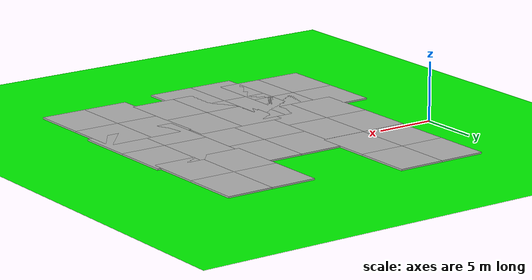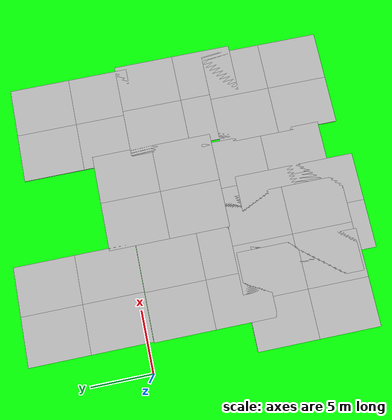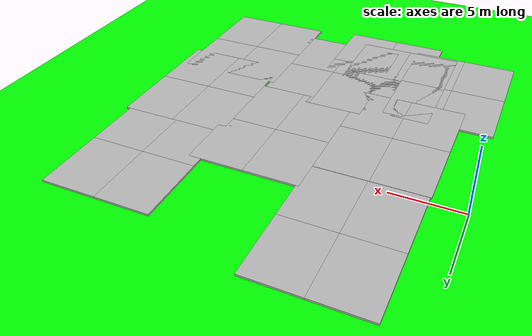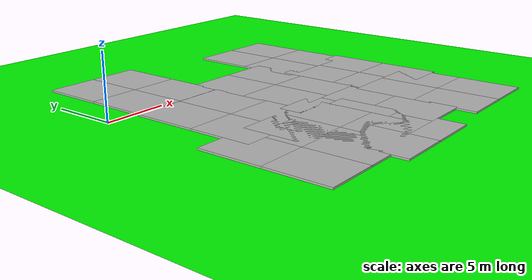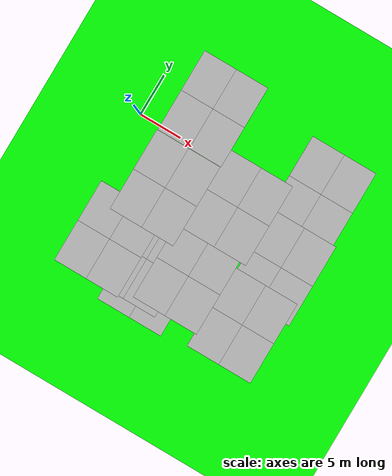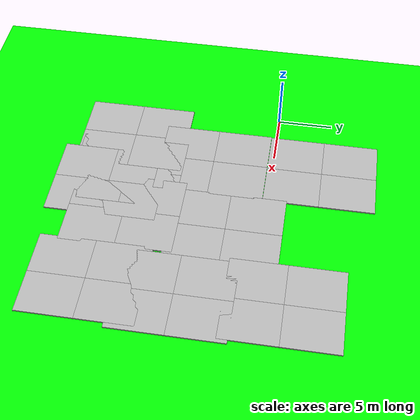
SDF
<sdf version="1.6">
 <world name="default">
  <model name="ground_plane">
   <static>1</static>
   <link name="link">
    <collision name="collision">
     <geometry><plane><normal>0 0 1</normal><size>100 100</size></plane></geometry>
     <surface><friction><ode><mu>100</mu><mu2>50</mu2></ode></friction></surface>
    </collision>
    <visual name="visual">
     <cast_shadows>0</cast_shadows>
     <geometry><plane><normal>0 0 1</normal><size>100 100</size></plane></geometry>
     <material>
      <ambient>0 1 0 1</ambient>
      <diffuse>0 1 0 1</diffuse>
      <specular>0.1 0.1 0.1 1</specular>
      <emissive>0 0 0 0</emissive>
     </material>
    </visual>
   </link>
  </model>
  <model name="mud_box_clone_2">
   <static>1</static>
   <link name="link">
    <collision name="collision"><geometry><box><size>8 10 0.2</size></box></geometry></collision>
    <visual name="visual_1">
     <pose>-2 2.5 0 0 -0 0</pose>
     <cast_shadows>0</cast_shadows>
     <geometry><box><size>4 5 0.2</size></box></geometry>
     <material>
      <script>
       <uri>model://mud_box/materials/scripts</uri>
       <uri>model://mud_box/materials/textures</uri>
       <name>vrc/mud</name>
      </script>
     </material>
    </visual>
    <visual name="visual_2">
     <pose>2 2.5 0 0 -0 0</pose>
     <cast_shadows>0</cast_shadows>
     <geometry><box><size>4 5 0.2</size></box></geometry>
     <material>
      <script>
       <uri>model://mud_box/materials/scripts</uri>
       <uri>model://mud_box/materials/textures</uri>
       <name>vrc/mud</name>
      </script>
     </material>
    </visual>
    <visual name="visual_3">
     <pose>2 -2.5 0 0 -0 0</pose>
     <cast_shadows>0</cast_shadows>
     <geometry><box><size>4 5 0.2</size></box></geometry>
     <material>
      <script>
       <uri>model://mud_box/materials/scripts</uri>
       <uri>model://mud_box/materials/textures</uri>
       <name>vrc/mud</name>
      </script>
     </material>
    </visual>
    <visual name="visual_4">
     <pose>-2 -2.5 0 0 -0 0</pose>
     <cast_shadows>0</cast_shadows>
     <geometry><box><size>4 5 0.2</size></box></geometry>
     <material>
      <script>
       <uri>model://mud_box/materials/scripts</uri>
       <uri>model://mud_box/materials/textures</uri>
       <name>vrc/mud</name>
      </script>
     </material>
    </visual>
   </link>
   <pose>6.41573 4.52602 0 0 -0 0</pose>
  </model>
  <model name="mud_box_clone_3">
   <static>1</static>
   <link name="link">
    <collision name="collision"><geometry><box><size>8 10 0.2</size></box></geometry></collision>
    <visual name="visual_1">
     <pose>-2 2.5 0 0 -0 0</pose>
     <cast_shadows>0</cast_shadows>
     <geometry><box><size>4 5 0.2</size></box></geometry>
     <material>
      <script>
       <uri>model://mud_box/materials/scripts</uri>
       <uri>model://mud_box/materials/textures</uri>
       <name>vrc/mud</name>
      </script>
     </material>
    </visual>
    <visual name="visual_2">
     <pose>2 2.5 0 0 -0 0</pose>
     <cast_shadows>0</cast_shadows>
     <geometry><box><size>4 5 0.2</size></box></geometry>
     <material>
      <script>
       <uri>model://mud_box/materials/scripts</uri>
       <uri>model://mud_box/materials/textures</uri>
       <name>vrc/mud</name>
      </script>
     </material>
    </visual>
    <visual name="visual_3">
     <pose>2 -2.5 0 0 -0 0</pose>
     <cast_shadows>0</cast_shadows>
     <geometry><box><size>4 5 0.2</size></box></geometry>
     <material>
      <script>
       <uri>model://mud_box/materials/scripts</uri>
       <uri>model://mud_box/materials/textures</uri>
       <name>vrc/mud</name>
      </script>
     </material>
    </visual>
    <visual name="visual_4">
     <pose>-2 -2.5 0 0 -0 0</pose>
     <cast_shadows>0</cast_shadows>
     <geometry><box><size>4 5 0.2</size></box></geometry>
     <material>
      <script>
       <uri>model://mud_box/materials/scripts</uri>
       <uri>model://mud_box/materials/textures</uri>
       <name>vrc/mud</name>
      </script>
     </material>
    </visual>
   </link>
   <pose>6.33977 -5.49838 0 0 -0 0</pose>
  </model>
  <model name="mud_box_clone_5">
   <static>1</static>
   <link name="link">
    <collision name="collision"><geometry><box><size>8 10 0.2</size></box></geometry></collision>
    <visual name="visual_1">
     <pose>-2 2.5 0 0 -0 0</pose>
     <cast_shadows>0</cast_shadows>
     <geometry><box><size>4 5 0.2</size></box></geometry>
     <material>
      <script>
       <uri>model://mud_box/materials/scripts</uri>
       <uri>model://mud_box/materials/textures</uri>
       <name>vrc/mud</name>
      </script>
     </material>
    </visual>
    <visual name="visual_2">
     <pose>2 2.5 0 0 -0 0</pose>
     <cast_shadows>0</cast_shadows>
     <geometry><box><size>4 5 0.2</size></box></geometry>
     <material>
      <script>
       <uri>model://mud_box/materials/scripts</uri>
       <uri>model://mud_box/materials/textures</uri>
       <name>vrc/mud</name>
      </script>
     </material>
    </visual>
    <visual name="visual_3">
     <pose>2 -2.5 0 0 -0 0</pose>
     <cast_shadows>0</cast_shadows>
     <geometry><box><size>4 5 0.2</size></box></geometry>
     <material>
      <script>
       <uri>model://mud_box/materials/scripts</uri>
       <uri>model://mud_box/materials/textures</uri>
       <name>vrc/mud</name>
      </script>
     </material>
    </visual>
    <visual name="visual_4">
     <pose>-2 -2.5 0 0 -0 0</pose>
     <cast_shadows>0</cast_shadows>
     <geometry><box><size>4 5 0.2</size></box></geometry>
     <material>
      <script>
       <uri>model://mud_box/materials/scripts</uri>
       <uri>model://mud_box/materials/textures</uri>
       <name>vrc/mud</name>
      </script>
     </material>
    </visual>
   </link>
   <pose>14.1998 -3.30517 0 0 -0 0</pose>
  </model>
  <model name="mud_box_clone_6">
   <static>1</static>
   <link name="link">
    <collision name="collision"><geometry><box><size>8 10 0.2</size></box></geometry></collision>
    <visual name="visual_1">
     <pose>-2 2.5 0 0 -0 0</pose>
     <cast_shadows>0</cast_shadows>
     <geometry><box><size>4 5 0.2</size></box></geometry>
     <material>
      <script>
       <uri>model://mud_box/materials/scripts</uri>
       <uri>model://mud_box/materials/textures</uri>
       <name>vrc/mud</name>
      </script>
     </material>
    </visual>
    <visual name="visual_2">
     <pose>2 2.5 0 0 -0 0</pose>
     <cast_shadows>0</cast_shadows>
     <geometry><box><size>4 5 0.2</size></box></geometry>
     <material>
      <script>
       <uri>model://mud_box/materials/scripts</uri>
       <uri>model://mud_box/materials/textures</uri>
       <name>vrc/mud</name>
      </script>
     </material>
    </visual>
    <visual name="visual_3">
     <pose>2 -2.5 0 0 -0 0</pose>
     <cast_shadows>0</cast_shadows>
     <geometry><box><size>4 5 0.2</size></box></geometry>
     <material>
      <script>
       <uri>model://mud_box/materials/scripts</uri>
       <uri>model://mud_box/materials/textures</uri>
       <name>vrc/mud</name>
      </script>
     </material>
    </visual>
    <visual name="visual_4">
     <pose>-2 -2.5 0 0 -0 0</pose>
     <cast_shadows>0</cast_shadows>
     <geometry><box><size>4 5 0.2</size></box></geometry>
     <material>
      <script>
       <uri>model://mud_box/materials/scripts</uri>
       <uri>model://mud_box/materials/textures</uri>
       <name>vrc/mud</name>
      </script>
     </material>
    </visual>
   </link>
   <pose>13.4278 -12.4629 0 0 -0 0</pose>
  </model>
  <model name="mud_box_clone_7">
   <static>1</static>
   <link name="link">
    <collision name="collision"><geometry><box><size>8 10 0.2</size></box></geometry></collision>
    <visual name="visual_1">
     <pose>-2 2.5 0 0 -0 0</pose>
     <cast_shadows>0</cast_shadows>
     <geometry><box><size>4 5 0.2</size></box></geometry>
     <material>
      <script>
       <uri>model://mud_box/materials/scripts</uri>
       <uri>model://mud_box/materials/textures</uri>
       <name>vrc/mud</name>
      </script>
     </material>
    </visual>
    <visual name="visual_2">
     <pose>2 2.5 0 0 -0 0</pose>
     <cast_shadows>0</cast_shadows>
     <geometry><box><size>4 5 0.2</size></box></geometry>
     <material>
      <script>
       <uri>model://mud_box/materials/scripts</uri>
       <uri>model://mud_box/materials/textures</uri>
       <name>vrc/mud</name>
      </script>
     </material>
    </visual>
    <visual name="visual_3">
     <pose>2 -2.5 0 0 -0 0</pose>
     <cast_shadows>0</cast_shadows>
     <geometry><box><size>4 5 0.2</size></box></geometry>
     <material>
      <script>
       <uri>model://mud_box/materials/scripts</uri>
       <uri>model://mud_box/materials/textures</uri>
       <name>vrc/mud</name>
      </script>
     </material>
    </visual>
    <visual name="visual_4">
     <pose>-2 -2.5 0 0 -0 0</pose>
     <cast_shadows>0</cast_shadows>
     <geometry><box><size>4 5 0.2</size></box></geometry>
     <material>
      <script>
       <uri>model://mud_box/materials/scripts</uri>
       <uri>model://mud_box/materials/textures</uri>
       <name>vrc/mud</name>
      </script>
     </material>
    </visual>
   </link>
   <pose>3.9904 -13.3757 0 0 -0 0</pose>
  </model>
  <model name="mud_box_clone_8">
   <static>1</static>
   <link name="link">
    <collision name="collision"><geometry><box><size>8 10 0.2</size></box></geometry></collision>
    <visual name="visual_1">
     <pose>-2 2.5 0 0 -0 0</pose>
     <cast_shadows>0</cast_shadows>
     <geometry><box><size>4 5 0.2</size></box></geometry>
     <material>
      <script>
       <uri>model://mud_box/materials/scripts</uri>
       <uri>model://mud_box/materials/textures</uri>
       <name>vrc/mud</name>
      </script>
     </material>
    </visual>
    <visual name="visual_2">
     <pose>2 2.5 0 0 -0 0</pose>
     <cast_shadows>0</cast_shadows>
     <geometry><box><size>4 5 0.2</size></box></geometry>
     <material>
      <script>
       <uri>model://mud_box/materials/scripts</uri>
       <uri>model://mud_box/materials/textures</uri>
       <name>vrc/mud</name>
      </script>
     </material>
    </visual>
    <visual name="visual_3">
     <pose>2 -2.5 0 0 -0 0</pose>
     <cast_shadows>0</cast_shadows>
     <geometry><box><size>4 5 0.2</size></box></geometry>
     <material>
      <script>
       <uri>model://mud_box/materials/scripts</uri>
       <uri>model://mud_box/materials/textures</uri>
       <name>vrc/mud</name>
      </script>
     </material>
    </visual>
    <visual name="visual_4">
     <pose>-2 -2.5 0 0 -0 0</pose>
     <cast_shadows>0</cast_shadows>
     <geometry><box><size>4 5 0.2</size></box></geometry>
     <material>
      <script>
       <uri>model://mud_box/materials/scripts</uri>
       <uri>model://mud_box/materials/textures</uri>
       <name>vrc/mud</name>
      </script>
     </material>
    </visual>
   </link>
   <pose>8.56451 -13.1819 0 0 -0 0</pose>
  </model>
  <model name="mud_box_clone_8_clone_clone_12">
   <static>1</static>
   <link name="link">
    <collision name="collision"><geometry><box><size>8 10 0.2</size></box></geometry></collision>
    <visual name="visual_1">
     <pose>-2 2.5 0 0 -0 0</pose>
     <cast_shadows>0</cast_shadows>
     <geometry><box><size>4 5 0.2</size></box></geometry>
     <material>
      <script>
       <uri>model://mud_box/materials/scripts</uri>
       <uri>model://mud_box/materials/textures</uri>
       <name>vrc/mud</name>
      </script>
     </material>
    </visual>
    <visual name="visual_2">
     <pose>2 2.5 0 0 -0 0</pose>
     <cast_shadows>0</cast_shadows>
     <geometry><box><size>4 5 0.2</size></box></geometry>
     <material>
      <script>
       <uri>model://mud_box/materials/scripts</uri>
       <uri>model://mud_box/materials/textures</uri>
       <name>vrc/mud</name>
      </script>
     </material>
    </visual>
    <visual name="visual_3">
     <pose>2 -2.5 0 0 -0 0</pose>
     <cast_shadows>0</cast_shadows>
     <geometry><box><size>4 5 0.2</size></box></geometry>
     <material>
      <script>
       <uri>model://mud_box/materials/scripts</uri>
       <uri>model://mud_box/materials/textures</uri>
       <name>vrc/mud</name>
      </script>
     </material>
    </visual>
    <visual name="visual_4">
     <pose>-2 -2.5 0 0 -0 0</pose>
     <cast_shadows>0</cast_shadows>
     <geometry><box><size>4 5 0.2</size></box></geometry>
     <material>
      <script>
       <uri>model://mud_box/materials/scripts</uri>
       <uri>model://mud_box/materials/textures</uri>
       <name>vrc/mud</name>
      </script>
     </material>
    </visual>
   </link>
   <pose>21.1697 -14.034 0 0 -0 0</pose>
  </model>
  <model name="mud_box_clone_8_clone_clone_13">
   <static>1</static>
   <link name="link">
    <collision name="collision"><geometry><box><size>8 10 0.2</size></box></geometry></collision>
    <visual name="visual_1">
     <pose>-2 2.5 0 0 -0 0</pose>
     <cast_shadows>0</cast_shadows>
     <geometry><box><size>4 5 0.2</size></box></geometry>
     <material>
      <script>
       <uri>model://mud_box/materials/scripts</uri>
       <uri>model://mud_box/materials/textures</uri>
       <name>vrc/mud</name>
      </script>
     </material>
    </visual>
    <visual name="visual_2">
     <pose>2 2.5 0 0 -0 0</pose>
     <cast_shadows>0</cast_shadows>
     <geometry><box><size>4 5 0.2</size></box></geometry>
     <material>
      <script>
       <uri>model://mud_box/materials/scripts</uri>
       <uri>model://mud_box/materials/textures</uri>
       <name>vrc/mud</name>
      </script>
     </material>
    </visual>
    <visual name="visual_3">
     <pose>2 -2.5 0 0 -0 0</pose>
     <cast_shadows>0</cast_shadows>
     <geometry><box><size>4 5 0.2</size></box></geometry>
     <material>
      <script>
       <uri>model://mud_box/materials/scripts</uri>
       <uri>model://mud_box/materials/textures</uri>
       <name>vrc/mud</name>
      </script>
     </material>
    </visual>
    <visual name="visual_4">
     <pose>-2 -2.5 0 0 -0 0</pose>
     <cast_shadows>0</cast_shadows>
     <geometry><box><size>4 5 0.2</size></box></geometry>
     <material>
      <script>
       <uri>model://mud_box/materials/scripts</uri>
       <uri>model://mud_box/materials/textures</uri>
       <name>vrc/mud</name>
      </script>
     </material>
    </visual>
   </link>
   <pose>21.6087 -6.52247 0 0 -0 0</pose>
  </model>
  <model name="mud_box_clone_8_clone_clone_14">
   <static>1</static>
   <link name="link">
    <collision name="collision"><geometry><box><size>8 10 0.2</size></box></geometry></collision>
    <visual name="visual_1">
     <pose>-2 2.5 0 0 -0 0</pose>
     <cast_shadows>0</cast_shadows>
     <geometry><box><size>4 5 0.2</size></box></geometry>
     <material>
      <script>
       <uri>model://mud_box/materials/scripts</uri>
       <uri>model://mud_box/materials/textures</uri>
       <name>vrc/mud</name>
      </script>
     </material>
    </visual>
    <visual name="visual_2">
     <pose>2 2.5 0 0 -0 0</pose>
     <cast_shadows>0</cast_shadows>
     <geometry><box><size>4 5 0.2</size></box></geometry>
     <material>
      <script>
       <uri>model://mud_box/materials/scripts</uri>
       <uri>model://mud_box/materials/textures</uri>
       <name>vrc/mud</name>
      </script>
     </material>
    </visual>
    <visual name="visual_3">
     <pose>2 -2.5 0 0 -0 0</pose>
     <cast_shadows>0</cast_shadows>
     <geometry><box><size>4 5 0.2</size></box></geometry>
     <material>
      <script>
       <uri>model://mud_box/materials/scripts</uri>
       <uri>model://mud_box/materials/textures</uri>
       <name>vrc/mud</name>
      </script>
     </material>
    </visual>
    <visual name="visual_4">
     <pose>-2 -2.5 0 0 -0 0</pose>
     <cast_shadows>0</cast_shadows>
     <geometry><box><size>4 5 0.2</size></box></geometry>
     <material>
      <script>
       <uri>model://mud_box/materials/scripts</uri>
       <uri>model://mud_box/materials/textures</uri>
       <name>vrc/mud</name>
      </script>
     </material>
    </visual>
   </link>
   <pose>21.2715 2.53707 0 0 -0 0</pose>
  </model>
  <model name="mud_box_clone_8_clone_clone_2_clone">
   <static>1</static>
   <link name="link">
    <collision name="collision"><geometry><box><size>8 10 0.2</size></box></geometry></collision>
    <visual name="visual_1">
     <pose>-2 2.5 0 0 -0 0</pose>
     <cast_shadows>0</cast_shadows>
     <geometry><box><size>4 5 0.2</size></box></geometry>
     <material>
      <script>
       <uri>model://mud_box/materials/scripts</uri>
       <uri>model://mud_box/materials/textures</uri>
       <name>vrc/mud</name>
      </script>
     </material>
    </visual>
    <visual name="visual_2">
     <pose>2 2.5 0 0 -0 0</pose>
     <cast_shadows>0</cast_shadows>
     <geometry><box><size>4 5 0.2</size></box></geometry>
     <material>
      <script>
       <uri>model://mud_box/materials/scripts</uri>
       <uri>model://mud_box/materials/textures</uri>
       <name>vrc/mud</name>
      </script>
     </material>
    </visual>
    <visual name="visual_3">
     <pose>2 -2.5 0 0 -0 0</pose>
     <cast_shadows>0</cast_shadows>
     <geometry><box><size>4 5 0.2</size></box></geometry>
     <material>
      <script>
       <uri>model://mud_box/materials/scripts</uri>
       <uri>model://mud_box/materials/textures</uri>
       <name>vrc/mud</name>
      </script>
     </material>
    </visual>
    <visual name="visual_4">
     <pose>-2 -2.5 0 0 -0 0</pose>
     <cast_shadows>0</cast_shadows>
     <geometry><box><size>4 5 0.2</size></box></geometry>
     <material>
      <script>
       <uri>model://mud_box/materials/scripts</uri>
       <uri>model://mud_box/materials/textures</uri>
       <name>vrc/mud</name>
      </script>
     </material>
    </visual>
   </link>
   <pose>10.1733 -14.6116 0 0 -0 0</pose>
  </model>
 </world>
</sdf>
